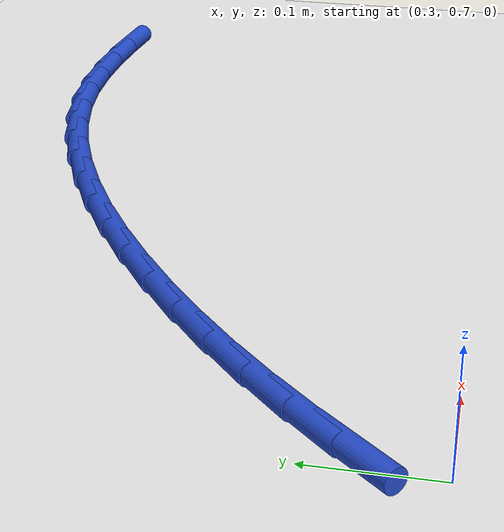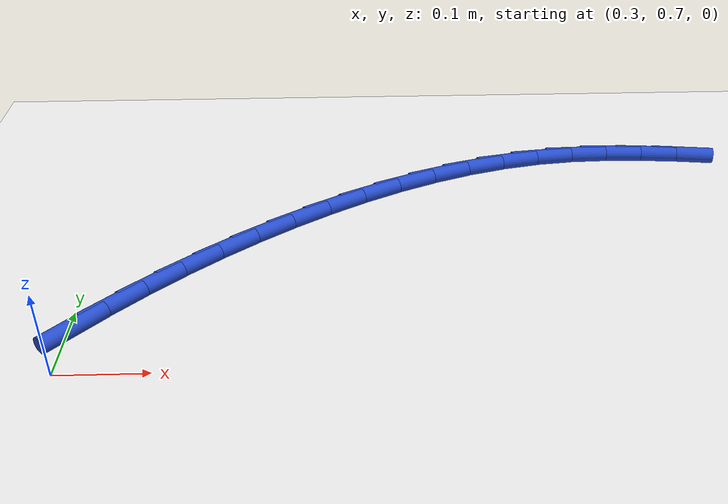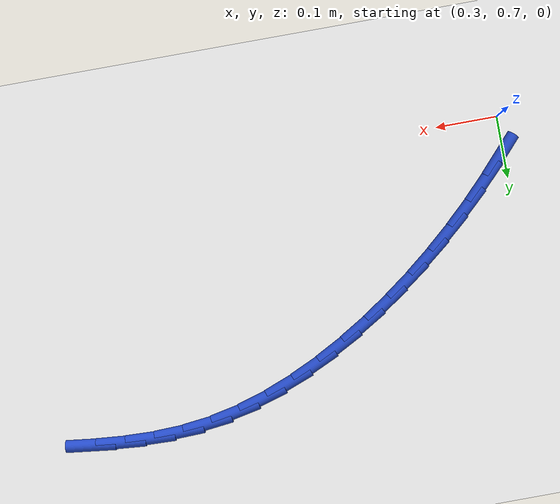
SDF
<sdf version="1.6">
 <world name="default">
  <model name="ground_plane">
   <static>1</static>
   <link name="link">
    <collision name="collision">
     <geometry><plane><normal>0 0 1</normal><size>100 100</size></plane></geometry>
     <surface><friction><ode><mu>100</mu><mu2>50</mu2></ode></friction></surface>
    </collision>
    <visual name="visual">
     <cast_shadows>0</cast_shadows>
     <geometry><plane><normal>0 0 1</normal><size>100 100</size></plane></geometry>
     <material>
      <script><uri>file://media/materials/scripts/gazebo.material</uri><name>Gazebo/WhiteGlow</name></script>
     </material>
    </visual>
   </link>
  </model>
  <model name="line">
   <link name="link_17">
    <pose>0.3078602874560533 0.7635682013008875 0.01 0 1.57 0.8336713838829888</pose>
    <collision name="collision">
     <geometry><cylinder><radius>0.01</radius><length>0.08</length></cylinder></geometry>
    </collision>
    <visual name="visual">
     <material>
      <script><name>Gazebo/Blue</name><uri>file://media/materials/scripts/gazebo.material</uri></script>
     </material>
     <geometry><cylinder><radius>0.01</radius><length>0.08</length></cylinder></geometry>
    </visual>
   </link>
   <link name="link_18">
    <pose>0.3412358793786213 0.8003322941805997 0.01 0 1.57 0.7937331390714485</pose>
    <collision name="collision">
     <geometry><cylinder><radius>0.01</radius><length>0.08</length></cylinder></geometry>
    </collision>
    <visual name="visual">
     <material>
      <script><name>Gazebo/Blue</name><uri>file://media/materials/scripts/gazebo.material</uri></script>
     </material>
     <geometry><cylinder><radius>0.01</radius><length>0.08</length></cylinder></geometry>
    </visual>
   </link>
   <link name="link_19">
    <pose>0.376135818212747 0.8358189168789364 0.01 0 1.57 0.7533816992979713</pose>
    <collision name="collision">
     <geometry><cylinder><radius>0.01</radius><length>0.08</length></cylinder></geometry>
    </collision>
    <visual name="visual">
     <material>
      <script><name>Gazebo/Blue</name><uri>file://media/materials/scripts/gazebo.material</uri></script>
     </material>
     <geometry><cylinder><radius>0.01</radius><length>0.08</length></cylinder></geometry>
    </visual>
   </link>
   <link name="link_20">
    <pose>0.4125441233094689 0.8699674687226657 0.01 0 1.57 0.7126214901543351</pose>
    <collision name="collision">
     <geometry><cylinder><radius>0.01</radius><length>0.08</length></cylinder></geometry>
    </collision>
    <visual name="visual">
     <material>
      <script><name>Gazebo/Blue</name><uri>file://media/materials/scripts/gazebo.material</uri></script>
     </material>
     <geometry><cylinder><radius>0.01</radius><length>0.08</length></cylinder></geometry>
    </visual>
   </link>
   <link name="link_21">
    <pose>0.4504448140198256 0.9027173490385559 0.01 0 1.57 0.6714639815200801</pose>
    <collision name="collision">
     <geometry><cylinder><radius>0.01</radius><length>0.08</length></cylinder></geometry>
    </collision>
    <visual name="visual">
     <material>
      <script><name>Gazebo/Blue</name><uri>file://media/materials/scripts/gazebo.material</uri></script>
     </material>
     <geometry><cylinder><radius>0.01</radius><length>0.08</length></cylinder></geometry>
    </visual>
   </link>
   <link name="link_22">
    <pose>0.4898219096948555 0.9340079571533739 0.01 0 1.57 0.6299079099260075</pose>
    <collision name="collision">
     <geometry><cylinder><radius>0.01</radius><length>0.08</length></cylinder></geometry>
    </collision>
    <visual name="visual">
     <material>
      <script><name>Gazebo/Blue</name><uri>file://media/materials/scripts/gazebo.material</uri></script>
     </material>
     <geometry><cylinder><radius>0.01</radius><length>0.08</length></cylinder></geometry>
    </visual>
   </link>
   <link name="link_23">
    <pose>0.5306584268990399 0.9637767039003803 0.01 0 1.57 0.5866452012484016</pose>
    <collision name="collision">
     <geometry><cylinder><radius>0.01</radius><length>0.08</length></cylinder></geometry>
    </collision>
    <visual name="visual">
     <material>
      <script><name>Gazebo/Blue</name><uri>file://media/materials/scripts/gazebo.material</uri></script>
     </material>
     <geometry><cylinder><radius>0.01</radius><length>0.08</length></cylinder></geometry>
    </visual>
   </link>
   <link name="link_24">
    <pose>0.5728758259570633 0.9918389360680806 0.01 0 1.57 0.5391680719599047</pose>
    <collision name="collision">
     <geometry><cylinder><radius>0.01</radius><length>0.08</length></cylinder></geometry>
    </collision>
    <visual name="visual">
     <material>
      <script><name>Gazebo/Blue</name><uri>file://media/materials/scripts/gazebo.material</uri></script>
     </material>
     <geometry><cylinder><radius>0.01</radius><length>0.08</length></cylinder></geometry>
    </visual>
   </link>
   <link name="link_25">
    <pose>0.6162993476319881 1.0178192001473185 0.01 0 1.57 0.48647269864728404</pose>
    <collision name="collision">
     <geometry><cylinder><radius>0.01</radius><length>0.08</length></cylinder></geometry>
    </collision>
    <visual name="visual">
     <material>
      <script><name>Gazebo/Blue</name><uri>file://media/materials/scripts/gazebo.material</uri></script>
     </material>
     <geometry><cylinder><radius>0.01</radius><length>0.08</length></cylinder></geometry>
    </visual>
   </link>
   <link name="link_26">
    <pose>0.660745860645407 1.0413254411398276 0.01 0 1.57 0.42764175349862216</pose>
    <collision name="collision">
     <geometry><cylinder><radius>0.01</radius><length>0.08</length></cylinder></geometry>
    </collision>
    <visual name="visual">
     <material>
      <script><name>Gazebo/Blue</name><uri>file://media/materials/scripts/gazebo.material</uri></script>
     </material>
     <geometry><cylinder><radius>0.01</radius><length>0.08</length></cylinder></geometry>
    </visual>
   </link>
   <link name="link_27">
    <pose>0.7060322337189124 1.0619656040473429 0.01 0 1.57 0.36169408252615554</pose>
    <collision name="collision">
     <geometry><cylinder><radius>0.01</radius><length>0.08</length></cylinder></geometry>
    </collision>
    <visual name="visual">
     <material>
      <script><name>Gazebo/Blue</name><uri>file://media/materials/scripts/gazebo.material</uri></script>
     </material>
     <geometry><cylinder><radius>0.01</radius><length>0.08</length></cylinder></geometry>
    </visual>
   </link>
   <link name="link_28">
    <pose>0.7519753355740979 1.079347633871599 0.01 0 1.57 0.287634446819233</pose>
    <collision name="collision">
     <geometry><cylinder><radius>0.01</radius><length>0.08</length></cylinder></geometry>
    </collision>
    <visual name="visual">
     <material>
      <script><name>Gazebo/Blue</name><uri>file://media/materials/scripts/gazebo.material</uri></script>
     </material>
     <geometry><cylinder><radius>0.01</radius><length>0.08</length></cylinder></geometry>
    </visual>
   </link>
   <link name="link_29">
    <pose>0.7983920349325566 1.0930794756143307 0.01 0 1.57 0.20455269811188523</pose>
    <collision name="collision">
     <geometry><cylinder><radius>0.01</radius><length>0.08</length></cylinder></geometry>
    </collision>
    <visual name="visual">
     <material>
      <script><name>Gazebo/Blue</name><uri>file://media/materials/scripts/gazebo.material</uri></script>
     </material>
     <geometry><cylinder><radius>0.01</radius><length>0.08</length></cylinder></geometry>
    </visual>
   </link>
   <link name="link_30">
    <pose>0.845099200515881 1.1027690742772724 0.01 0 1.57 0.11411562553044557</pose>
    <collision name="collision">
     <geometry><cylinder><radius>0.01</radius><length>0.08</length></cylinder></geometry>
    </collision>
    <visual name="visual">
     <material>
      <script><name>Gazebo/Blue</name><uri>file://media/materials/scripts/gazebo.material</uri></script>
     </material>
     <geometry><cylinder><radius>0.01</radius><length>0.08</length></cylinder></geometry>
    </visual>
   </link>
   <link name="link_31">
    <pose>0.8919518312388062 1.1081390216261917 0.01 0 1.57 0.03157217377657766</pose>
    <collision name="collision">
     <geometry><cylinder><radius>0.01</radius><length>0.08</length></cylinder></geometry>
    </collision>
    <visual name="visual">
     <material>
      <script><name>Gazebo/Blue</name><uri>file://media/materials/scripts/gazebo.material</uri></script>
     </material>
     <geometry><cylinder><radius>0.01</radius><length>0.08</length></cylinder></geometry>
    </visual>
   </link>
   <link name="link_32">
    <pose>0.9390425144659821 1.1096262710576204 0.01 0 1.57 -0.035424630919001894</pose>
    <collision name="collision">
     <geometry><cylinder><radius>0.01</radius><length>0.08</length></cylinder></geometry>
    </collision>
    <visual name="visual">
     <material>
      <script><name>Gazebo/Blue</name><uri>file://media/materials/scripts/gazebo.material</uri></script>
     </material>
     <geometry><cylinder><radius>0.01</radius><length>0.08</length></cylinder></geometry>
    </visual>
   </link>
   <link name="link_33">
    <pose>0.9865551901999472 1.1079424476509945 0.01 0 1.57 -0.08588138279649331</pose>
    <collision name="collision">
     <geometry><cylinder><radius>0.01</radius><length>0.08</length></cylinder></geometry>
    </collision>
    <visual name="visual">
     <material>
      <script><name>Gazebo/Blue</name><uri>file://media/materials/scripts/gazebo.material</uri></script>
     </material>
     <geometry><cylinder><radius>0.01</radius><length>0.08</length></cylinder></geometry>
    </visual>
   </link>
   <link name="link_34">
    <pose>1.0346739887554683 1.103799748701083 0.01 0 1.57 -0.11983788856053237</pose>
    <collision name="collision">
     <geometry><cylinder><radius>0.01</radius><length>0.08</length></cylinder></geometry>
    </collision>
    <visual name="visual">
     <material>
      <script><name>Gazebo/Blue</name><uri>file://media/materials/scripts/gazebo.material</uri></script>
     </material>
     <geometry><cylinder><radius>0.01</radius><length>0.08</length></cylinder></geometry>
    </visual>
   </link>
  </model>
 </world>
</sdf>
